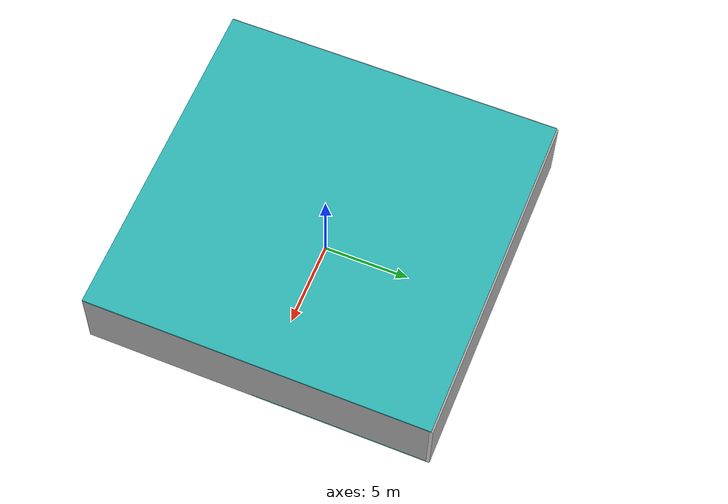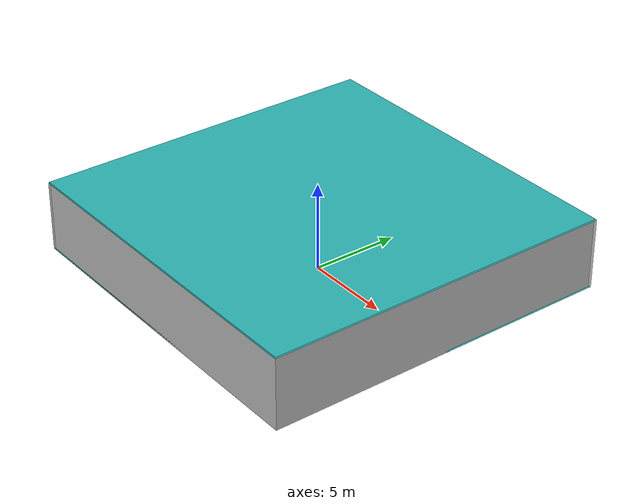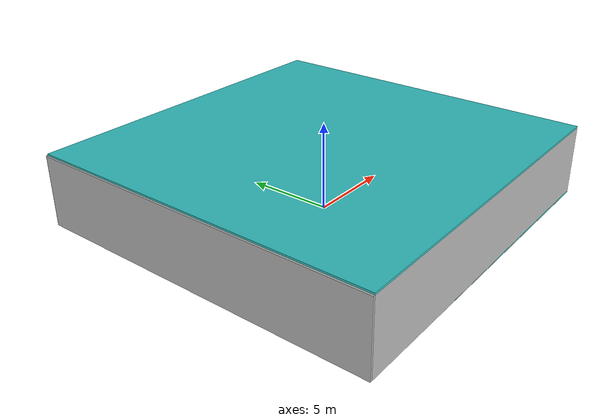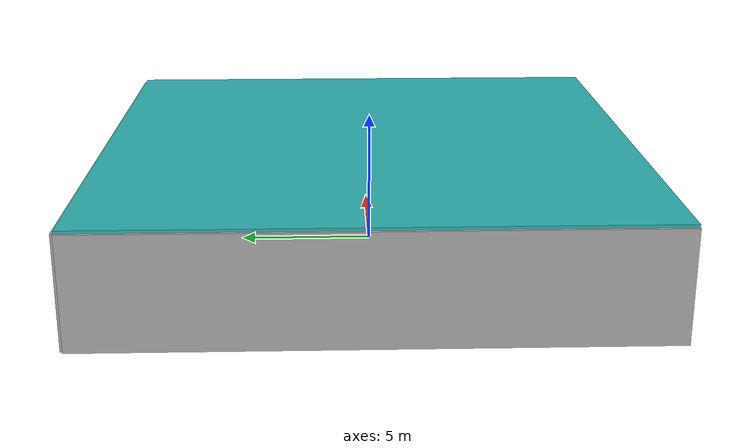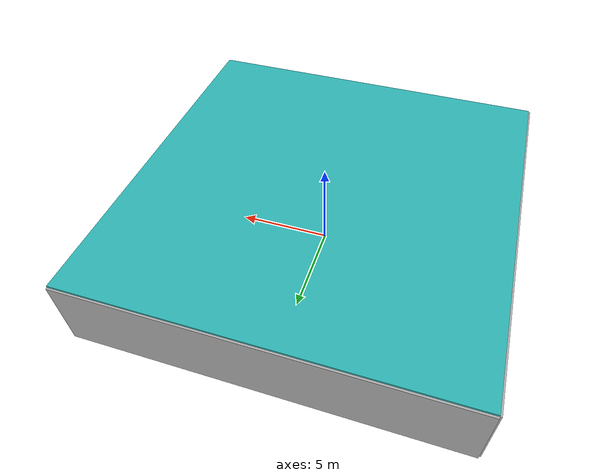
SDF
<sdf version="1.4">
 <world name="default">
  <physics type="ode">
   <max_step_size>0.001</max_step_size>
   <real_time_factor>1</real_time_factor>
   <real_time_update_rate>1000</real_time_update_rate>
   <gravity>0 0 -9.8</gravity>
  </physics>
  <scene><ambient>0.4 0.4 0.4 1</ambient><background>0.7 0.7 0.7 1</background><shadows>1</shadows></scene>
  <model name="Surrounding">
   <static>1</static>
   <link name="Ceiling">
    <collision name="Ceiling_Collision"><geometry><box><size>20 20 0.1</size></box></geometry></collision>
    <visual name="Ceiling_Visual">
     <geometry><box><size>20 20 0.1</size></box></geometry>
     <material>
      <script>
       <uri>file://media/materials/scripts/gazebo.material</uri>
       <name>Gazebo/TurquoiseGlowOutline</name>
      </script>
     </material>
    </visual>
    <pose>0 0 4.05 0 0 0</pose>
   </link>
   <link name="Wall_South">
    <collision name="Wall_South_Collision">
     <geometry><box><size>20 0 4</size></box></geometry>
     <pose>0 0 2 0 -0 0</pose>
    </collision>
    <visual name="Wall_South_Visual">
     <pose>0 0 2 0 -0 0</pose>
     <geometry><box><size>20 0 4</size></box></geometry>
     <material>
      <script><uri>file://media/materials/scripts/gazebo.material</uri><name>Gazebo/LightOff</name></script>
     </material>
    </visual>
    <velocity_decay><linear>0</linear><angular>0</angular></velocity_decay>
    <pose>0 -10 0 0 -0 0</pose>
   </link>
   <link name="Wall_East">
    <collision name="Wall_21_Collision">
     <geometry><box><size>20 0 4</size></box></geometry>
     <pose>0 0 2 0 -0 0</pose>
    </collision>
    <visual name="Wall_21_Visual">
     <pose>0 0 2 0 -0 0</pose>
     <geometry><box><size>20 0 4</size></box></geometry>
     <material>
      <script><uri>file://media/materials/scripts/gazebo.material</uri><name>Gazebo/Grey</name></script>
     </material>
    </visual>
    <velocity_decay><linear>0</linear><angular>0</angular></velocity_decay>
    <pose>10 0 0 0 -0 1.5708</pose>
   </link>
   <link name="Wall_North">
    <collision name="Wall_22_Collision">
     <geometry><box><size>20 0.2 4</size></box></geometry>
     <pose>0 0 2 0 -0 0</pose>
    </collision>
    <visual name="Wall_22_Visual">
     <pose>0 0 2 0 -0 0</pose>
     <geometry><box><size>20 0.2 4</size></box></geometry>
     <material>
      <script><uri>file://media/materials/scripts/gazebo.material</uri><name>Gazebo/LightOn</name></script>
     </material>
    </visual>
    <velocity_decay><linear>0</linear><angular>0</angular></velocity_decay>
    <pose>0 10 0 0 -0 0</pose>
   </link>
   <link name="Wall_West">
    <collision name="Wall_23_Collision">
     <geometry><box><size>20 0.2 4</size></box></geometry>
     <pose>0 0 2 0 -0 0</pose>
    </collision>
    <visual name="Wall_23_Visual">
     <pose>0 0 2 0 -0 0</pose>
     <geometry><box><size>20 0.2 4</size></box></geometry>
     <material>
      <script><uri>file://media/materials/scripts/gazebo.material</uri><name>Gazebo/JointAnchor</name></script>
     </material>
    </visual>
    <velocity_decay><linear>0</linear><angular>0</angular></velocity_decay>
    <pose>-10 0 0 0 0 -1.5708</pose>
   </link>
   <link name="Ground_link">
    <collision name="collision">
     <pose>0 0 .05 0 -0 0</pose>
     <geometry><box><size>20 20 0.1</size></box></geometry>
    </collision>
    <visual name="visual">
     <pose>0 0 .05 0 -0 0</pose>
     <geometry><box><size>20 20 0.1</size></box></geometry>
     <material>
      <script><uri>file://media/materials/scripts/gazebo.material</uri><name>Gazebo/TurquoiseGlow</name></script>
     </material>
    </visual>
   </link>
   <static>1</static>
  </model>
  <spherical_coordinates>
   <surface_model>EARTH_WGS84</surface_model>
   <latitude_deg>0</latitude_deg>
   <longitude_deg>0</longitude_deg>
   <elevation>0</elevation>
   <heading_deg>0</heading_deg>
  </spherical_coordinates>
  <light name="lightball_0" type="diffuse">
   <diffuse>0.8 0.8 0.8 1</diffuse>
   <specular>0.2 0.2 0.2 1</specular>
   <attenuation>
    <range>100</range>
    <constant>0.7</constant>
    <linear>0.01</linear>
    <quadratic>0.001</quadratic>
   </attenuation>
   <direction>-0.5 0.1 -0.9</direction>
   <pose>9.50721790383 1.64716540089 2.84092822487 0 0 0</pose>
  </light>
  <light name="lightball_1" type="diffuse">
   <diffuse>0.8 0.8 0.8 1</diffuse>
   <specular>0.2 0.2 0.2 1</specular>
   <attenuation>
    <range>100</range>
    <constant>0.7</constant>
    <linear>0.01</linear>
    <quadratic>0.001</quadratic>
   </attenuation>
   <direction>-0.5 0.1 -0.9</direction>
   <pose>9.70033172493 -5.67215522755 3.54962374214 0 0 0</pose>
  </light>
  <light name="lightball_2" type="diffuse">
   <diffuse>0.8 0.8 0.8 1</diffuse>
   <specular>0.2 0.2 0.2 1</specular>
   <attenuation>
    <range>100</range>
    <constant>0.7</constant>
    <linear>0.01</linear>
    <quadratic>0.001</quadratic>
   </attenuation>
   <direction>-0.5 0.1 -0.9</direction>
   <pose>3.2181136843 8.59569505299 2.76889900022 0 0 0</pose>
  </light>
  <light name="lightball_3" type="diffuse">
   <diffuse>0.8 0.8 0.8 1</diffuse>
   <specular>0.2 0.2 0.2 1</specular>
   <attenuation>
    <range>100</range>
    <constant>0.7</constant>
    <linear>0.01</linear>
    <quadratic>0.001</quadratic>
   </attenuation>
   <direction>-0.5 0.1 -0.9</direction>
   <pose>-4.37419307512 -4.25305164318 2.368692322 0 0 0</pose>
  </light>
  <light name="lightball_4" type="diffuse">
   <diffuse>0.8 0.8 0.8 1</diffuse>
   <specular>0.2 0.2 0.2 1</specular>
   <attenuation>
    <range>100</range>
    <constant>0.7</constant>
    <linear>0.01</linear>
    <quadratic>0.001</quadratic>
   </attenuation>
   <direction>-0.5 0.1 -0.9</direction>
   <pose>-3.42611360283 7.66381150327 2.93313744262 0 0 0</pose>
  </light>
  <light name="lightball_5" type="diffuse">
   <diffuse>0.8 0.8 0.8 1</diffuse>
   <specular>0.2 0.2 0.2 1</specular>
   <attenuation>
    <range>100</range>
    <constant>0.7</constant>
    <linear>0.01</linear>
    <quadratic>0.001</quadratic>
   </attenuation>
   <direction>-0.5 0.1 -0.9</direction>
   <pose>-9.7193611229 3.00025871617 2.75913932807 0 0 0</pose>
  </light>
  <light name="lightball_6" type="diffuse">
   <diffuse>0.8 0.8 0.8 1</diffuse>
   <specular>0.2 0.2 0.2 1</specular>
   <attenuation>
    <range>100</range>
    <constant>0.7</constant>
    <linear>0.01</linear>
    <quadratic>0.001</quadratic>
   </attenuation>
   <direction>-0.5 0.1 -0.9</direction>
   <pose>-5.67870252921 8.12032980109 3.58956301011 0 0 0</pose>
  </light>
  <light name="lightball_7" type="diffuse">
   <diffuse>0.8 0.8 0.8 1</diffuse>
   <specular>0.2 0.2 0.2 1</specular>
   <attenuation>
    <range>100</range>
    <constant>0.7</constant>
    <linear>0.01</linear>
    <quadratic>0.001</quadratic>
   </attenuation>
   <direction>-0.5 0.1 -0.9</direction>
   <pose>4.71449009041 -7.55371259356 1.27611503378 0 0 0</pose>
  </light>
  <light name="lightball_8" type="diffuse">
   <diffuse>0.8 0.8 0.8 1</diffuse>
   <specular>0.2 0.2 0.2 1</specular>
   <attenuation>
    <range>100</range>
    <constant>0.7</constant>
    <linear>0.01</linear>
    <quadratic>0.001</quadratic>
   </attenuation>
   <direction>-0.5 0.1 -0.9</direction>
   <pose>-7.79905233218 -7.95539992459 2.33736448858 0 0 0</pose>
  </light>
  <light name="lightball_9" type="diffuse">
   <diffuse>0.8 0.8 0.8 1</diffuse>
   <specular>0.2 0.2 0.2 1</specular>
   <attenuation>
    <range>100</range>
    <constant>0.7</constant>
    <linear>0.01</linear>
    <quadratic>0.001</quadratic>
   </attenuation>
   <direction>-0.5 0.1 -0.9</direction>
   <pose>-7.97497579376 5.40979309238 1.45124237001 0 0 0</pose>
  </light>
  <light name="lightball_10" type="diffuse">
   <diffuse>0.8 0.8 0.8 1</diffuse>
   <specular>0.2 0.2 0.2 1</specular>
   <attenuation>
    <range>100</range>
    <constant>0.7</constant>
    <linear>0.01</linear>
    <quadratic>0.001</quadratic>
   </attenuation>
   <direction>-0.5 0.1 -0.9</direction>
   <pose>-0.211063709529 -1.41260846412 3.66371910383 0 0 0</pose>
  </light>
  <light name="lightball_11" type="diffuse">
   <diffuse>0.8 0.8 0.8 1</diffuse>
   <specular>0.2 0.2 0.2 1</specular>
   <attenuation>
    <range>100</range>
    <constant>0.7</constant>
    <linear>0.01</linear>
    <quadratic>0.001</quadratic>
   </attenuation>
   <direction>-0.5 0.1 -0.9</direction>
   <pose>-1.24956177947 9.85588133304 1.16772826961 0 0 0</pose>
  </light>
  <light name="lightball_12" type="diffuse">
   <diffuse>0.8 0.8 0.8 1</diffuse>
   <specular>0.2 0.2 0.2 1</specular>
   <attenuation>
    <range>100</range>
    <constant>0.7</constant>
    <linear>0.01</linear>
    <quadratic>0.001</quadratic>
   </attenuation>
   <direction>-0.5 0.1 -0.9</direction>
   <pose>4.21262937431 9.03862346996 2.3361388227 0 0 0</pose>
  </light>
  <light name="lightball_13" type="diffuse">
   <diffuse>0.8 0.8 0.8 1</diffuse>
   <specular>0.2 0.2 0.2 1</specular>
   <attenuation>
    <range>100</range>
    <constant>0.7</constant>
    <linear>0.01</linear>
    <quadratic>0.001</quadratic>
   </attenuation>
   <direction>-0.5 0.1 -0.9</direction>
   <pose>-9.40415032439 -2.62317211418 2.98042300551 0 0 0</pose>
  </light>
  <include>
   <uri>model://construction_cone</uri>
   <pose>-5.52010307372 1.26407916877 0 0 0 1.5654529387</pose>
  </include>
  <include><uri>model://cabinet</uri><pose>-2.36649647499 -7.77582592815 0 0 0 1.15633066057</pose></include>
  <include><uri>model://cabinet</uri><pose>-2.5246919313 1.9394279122 0 0 0 1.81955392508</pose></include>
  <include><uri>model://cabinet</uri><pose>0.749688589555 0.989717029027 0 0 0 1.99569426127</pose></include>
  <include>
   <uri>model://robocup_3Dsim_goal</uri>
   <pose>8.50822052807 7.88043113923 0 0 0 2.37135649651</pose>
  </include>
 </world>
</sdf>

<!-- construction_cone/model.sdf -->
<sdf version="1.5">
  <model name="Construction Cone">
    <link name="link">
      <collision name="collision">
        <geometry>
          <mesh>
            <scale>10 10 10</scale>
            <uri>file://isr-testbed/construction_cone/meshes/construction_cone.dae</uri>
          </mesh>
        </geometry>
      </collision>
      <visual name="visual">
        <geometry>
          <mesh>
            <scale>10 10 10</scale>
            <uri>file://isr-testbed/construction_cone/meshes/construction_cone.dae</uri>
          </mesh>
        </geometry>
      </visual>
    </link>
  </model>
</sdf>

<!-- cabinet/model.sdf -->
<sdf version="1.5">
  <model name="cabinet">
    <static>true</static>
    <link name="cabinet_bottom_plate">
      <inertial>
        <pose>0 0 -1 0 0 0</pose>
        <inertia>
          <ixx>2.050000</ixx>
          <ixy>0</ixy>
          <ixz>0</ixz>
          <iyy>2.050000</iyy>
          <iyz>0</iyz>
          <izz>2.050000</izz>
        </inertia>
        <mass>25.000000</mass>
      </inertial>
      <collision name="cabinet_bottom_plate_geom">
        <pose>0 0 0.010000 0 0 0</pose>
        <geometry>
          <box>
            <size>0.450000 0.450000 0.020000</size>
          </box>
        </geometry>
      </collision>
      <visual name="cabinet_bottom_plate_geom_visual">
        <pose>0 0 0.010000 0 0 0</pose>
        <geometry>
          <box>
            <size>0.450000 0.450000 0.020000</size>
          </box>
        </geometry>
        <material>
          <script>
            <uri>model://media/materials/scripts/gazebo.material</uri>
            <name>Gazebo/Wood</name>
          </script>
        </material>
      </visual>
      <collision name="cabinet_bottom_plate_geom_cabinet_back_plate">
        <pose>0.235000 0 0.510000 0 0 0</pose>
        <geometry>
          <box>
            <size>0.020000 0.450000 1.020000</size>
          </box>
        </geometry>
      </collision>
      <visual name="cabinet_bottom_plate_geom_cabinet_back_plate_visual">
        <pose>0.235000 0 0.510000 0 0 0</pose>
        <geometry>
          <box>
            <size>0.020000 0.450000 1.020000</size>
          </box>
        </geometry>
        <material>
          <script>
            <uri>model://media/materials/scripts/gazebo.material</uri>
            <name>Gazebo/Wood</name>
          </script>
        </material>
      </visual>
      <collision name="cabinet_bottom_plate_geom_cabinet_left_plate">
        <pose>0 0.235000 0.510000 0 0 0</pose>
        <geometry>
          <box>
            <size>0.450000 0.020000 1.020000</size>
          </box>
        </geometry>
      </collision>
      <visual name="cabinet_bottom_plate_geom_cabinet_left_plate_visual">
        <pose>0 0.235000 0.510000 0 0 0</pose>
        <geometry>
          <box>
            <size>0.450000 0.020000 1.020000</size>
          </box>
        </geometry>
        <material>
          <script>
            <uri>model://media/materials/scripts/gazebo.material</uri>
            <name>Gazebo/Wood</name>
          </script>
        </material>
      </visual>
      <collision name="cabinet_bottom_plate_geom_cabinet_middle_plate">
        <pose>0 0 0.510000 0 0 0</pose>
        <geometry>
          <box>
            <size>0.450000 0.450000 0.020000</size>
          </box>
        </geometry>
      </collision>
      <visual name="cabinet_bottom_plate_geom_cabinet_middle_plate_visual">
        <pose>0 0 0.510000 0 0 0</pose>
        <geometry>
          <box>
            <size>0.450000 0.450000 0.020000</size>
          </box>
        </geometry>
        <material>
          <script>
            <uri>model://media/materials/scripts/gazebo.material</uri>
            <name>Gazebo/Wood</name>
          </script>
        </material>
      </visual>
      <collision name="cabinet_bottom_plate_geom_cabinet_right_plate">
        <pose>0 -0.235000 0.510000 0 0 0</pose>
        <geometry>
          <box>
            <size>0.450000 0.020000 1.020000</size>
          </box>
        </geometry>
      </collision>
      <visual name="cabinet_bottom_plate_geom_cabinet_right_plate_visual">
        <pose>0 -0.235000 0.510000 0 0 0</pose>
        <geometry>
          <box>
            <size>0.450000 0.020000 1.020000</size>
          </box>
        </geometry>
        <material>
          <script>
            <uri>model://media/materials/scripts/gazebo.material</uri>
            <name>Gazebo/Wood</name>
          </script>
        </material>
      </visual>
      <collision name="cabinet_bottom_plate_geom_cabinet_top_plate">
        <pose>0 0 1.010000 0 0 0</pose>
        <geometry>
          <box>
            <size>0.450000 0.450000 0.020000</size>
          </box>
        </geometry>
      </collision>
      <visual name="cabinet_bottom_plate_geom_cabinet_top_plate_visual">
        <pose>0 0 1.010000 0 0 0</pose>
        <geometry>
          <box>
            <size>0.450000 0.450000 0.020000</size>
          </box>
        </geometry>
        <material>
          <script>
            <uri>model://media/materials/scripts/gazebo.material</uri>
            <name>Gazebo/Wood</name>
          </script>
        </material>
      </visual>
    </link>
  </model>
</sdf>

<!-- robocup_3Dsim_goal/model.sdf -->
<sdf version="1.5">
  <model name="robocup_3d_goal">
    <static>true</static>
    <link name="left_post">
      <pose>0 1.05 0.45 0 0 0</pose>
      <collision name="collision">
        <geometry>
          <cylinder>
            <radius>0.05</radius>
            <length>0.9</length>
          </cylinder>
        </geometry>
      </collision>
      <visual name="visual">
        <geometry>
          <cylinder>
            <radius>0.05</radius>
            <length>0.9</length>
          </cylinder>
        </geometry>
        <material>
          <script>
            <uri>file://media/materials/scripts/gazebo.material</uri>
            <name>Gazebo/ZincYellow</name>
          </script>
        </material>
      </visual>
    </link>
    <link name="left_support_horiz_lower">
      <pose>0.30 1.05 0.01 0 0 0</pose>
      <collision name="collision">
        <geometry>
          <box>
            <size>0.50 0.02 0.02</size>
          </box>
        </geometry>
      </collision>
      <visual name="visual">
        <geometry>
          <box>
            <size>0.50 0.02 0.02</size>
          </box>
        </geometry>
        <material>
          <script>
            <uri>file://media/materials/scripts/gazebo.material</uri>
            <name>Gazebo/White</name>
          </script>
        </material>
      </visual>
    </link>
    <link name="left_support_horiz_upper">
      <pose>0.30 1.05 0.79 0 0 0</pose>
      <collision name="collision">
        <geometry>
          <box>
            <size>0.50 0.02 0.02</size>
          </box>
        </geometry>
      </collision>
      <visual name="visual">
        <geometry>
          <box>
            <size>0.50 0.02 0.02</size>
          </box>
        </geometry>
        <material>
          <script>
            <uri>file://media/materials/scripts/gazebo.material</uri>
            <name>Gazebo/White</name>
          </script>
        </material>
      </visual>
    </link>
    <link name="left_support_vertical">
      <pose>0.56 1.05 0.4 0 1.5708 0</pose>
      <collision name="collision">
        <geometry>
          <box>
            <size>0.80 0.02 0.02</size>
          </box>
        </geometry>
      </collision>
      <visual name="visual">
        <geometry>
          <box>
            <size>0.80 0.02 0.02</size>
          </box>
        </geometry>
        <material>
          <script>
            <uri>file://media/materials/scripts/gazebo.material</uri>
            <name>Gazebo/White</name>
          </script>
        </material>
      </visual>
    </link>
    <link name="right_support_horiz_lower">
      <pose>0.30 -1.05 0.01 0 0 0</pose>
      <collision name="collision">
        <geometry>
          <box>
            <size>0.50 0.02 0.02</size>
          </box>
        </geometry>
      </collision>
      <visual name="visual">
        <geometry>
          <box>
            <size>0.50 0.02 0.02</size>
          </box>
        </geometry>
        <material>
          <script>
            <uri>file://media/materials/scripts/gazebo.material</uri>
            <name>Gazebo/White</name>
          </script>
        </material>
      </visual>
    </link>
    <link name="right_support_horiz_upper">
      <pose>0.30 -1.05 0.79 0 0 0</pose>
      <collision name="collision">
        <geometry>
          <box>
            <size>0.50 0.02 0.02</size>
          </box>
        </geometry>
      </collision>
      <visual name="visual">
        <geometry>
          <box>
            <size>0.50 0.02 0.02</size>
          </box>
        </geometry>
        <material>
          <script>
            <uri>file://media/materials/scripts/gazebo.material</uri>
            <name>Gazebo/White</name>
          </script>
        </material>
      </visual>
    </link>
    <link name="right_support_vertical">
      <pose>0.56 -1.05 0.4 0 1.5708 0</pose>
      <collision name="collision">
        <geometry>
          <box>
            <size>0.80 0.02 0.02</size>
          </box>
        </geometry>
      </collision>
      <visual name="visual">
        <geometry>
          <box>
            <size>0.80 0.02 0.02</size>
          </box>
        </geometry>
        <material>
          <script>
            <uri>file://media/materials/scripts/gazebo.material</uri>
            <name>Gazebo/White</name>
          </script>
        </material>
      </visual>
    </link>
    <link name="center_support_horiz_lower">
      <pose>0.56 0 0.01 0 1.5708 0</pose>
      <collision name="collision">
        <geometry>
          <box>
            <size>0.02 2.08 0.02</size>
          </box>
        </geometry>
      </collision>
      <visual name="visual">
        <geometry>
          <box>
            <size>0.02 2.08 0.02</size>
          </box>
        </geometry>
        <material>
          <script>
            <uri>file://media/materials/scripts/gazebo.material</uri>
            <name>Gazebo/White</name>
          </script>
        </material>
      </visual>
    </link>
    <link name="center_support_horiz_upper">
      <pose>0.56 0 0.79 0 1.5708 0</pose>
      <collision name="collision">
        <geometry>
          <box>
            <size>0.02 2.08 0.02</size>
          </box>
        </geometry>
      </collision>
      <visual name="visual">
        <geometry>
          <box>
            <size>0.02 2.08 0.02</size>
          </box>
        </geometry>
        <material>
          <script>
            <uri>file://media/materials/scripts/gazebo.material</uri>
            <name>Gazebo/White</name>
          </script>
        </material>
      </visual>
    </link>
    <link name="right_post">
      <pose>0 -1.05 0.45 0 0 0</pose>
      <collision name="collision">
        <geometry>
          <cylinder>
            <radius>0.05</radius>
            <length>0.9</length>
          </cylinder>
        </geometry>
      </collision>
      <visual name="visual">
        <geometry>
          <cylinder>
            <radius>0.05</radius>
            <length>0.9</length>
          </cylinder>
        </geometry>
        <material>
          <script>
            <uri>file://media/materials/scripts/gazebo.material</uri>
            <name>Gazebo/ZincYellow</name>
          </script>
        </material>
      </visual>
    </link>
    <link name="crossbar">
      <pose>0 0 0.85 1.57 1.57 0</pose>
      <collision name="collision">
        <geometry>
          <cylinder>
            <radius>0.05</radius>
            <length>2.0</length>
          </cylinder>
        </geometry>
      </collision>
      <visual name="visual">
        <geometry>
          <cylinder>
            <radius>0.05</radius>
            <length>2.0</length>
          </cylinder>
        </geometry>
        <material>
          <script>
            <uri>file://media/materials/scripts/gazebo.material</uri>
            <name>Gazebo/ZincYellow</name>
          </script>
        </material>
      </visual>
    </link>
    <link name="center_net">
      <pose>0.56 0 0.40 0 0 0</pose>
      <collision name="collision">
        <geometry>
          <box>
            <size>0.01 2.1 0.80</size>
          </box>
        </geometry>
      </collision>
      <visual name="visual">
        <geometry>
          <box>
            <size>0.01 2.1 0.80</size>
          </box>
        </geometry>
        <material>
          <script>
            <uri>model://../model_source/models/robocup09_spl_field/materials/scripts/</uri>
            <uri>model://../model_source/models/robocup09_spl_field/materials/textures/</uri>
            <name>RoboCup/Net</name>
          </script>
        </material>
      </visual>
    </link>
    <link name="left_net">
      <pose>0.30 1.05 0.40 0 0 0</pose>
      <collision name="collision">
        <geometry>
          <box>
            <size>0.50 0.01 0.76</size>
          </box>
        </geometry>
      </collision>
      <visual name="visual">
        <geometry>
          <box>
            <size>0.50 0.01 0.76</size>
          </box>
        </geometry>
        <material>
          <script>
            <uri>model://../model_source/models/robocup09_spl_field/materials/scripts/</uri>
            <uri>model://../model_source/models/robocup09_spl_field/materials/textures/</uri>
            <name>RoboCup/Net</name>
          </script>
        </material>
      </visual>
    </link>
    <link name="right_net">
      <pose>0.30 -1.05 0.40 0 0 0</pose>
      <collision name="collision">
        <geometry>
          <box>
            <size>0.50 0.01 0.76</size>
          </box>
        </geometry>
      </collision>
      <visual name="visual">
        <geometry>
          <box>
            <size>0.50 0.01 0.76</size>
          </box>
        </geometry>
        <material>
          <script>
            <uri>model://../model_source/models/robocup09_spl_field/materials/scripts/</uri>
            <uri>model://../model_source/models/robocup09_spl_field/materials/textures/</uri>
            <name>RoboCup/Net</name>
          </script>
        </material>
      </visual>
    </link>
  </model>
</sdf>
